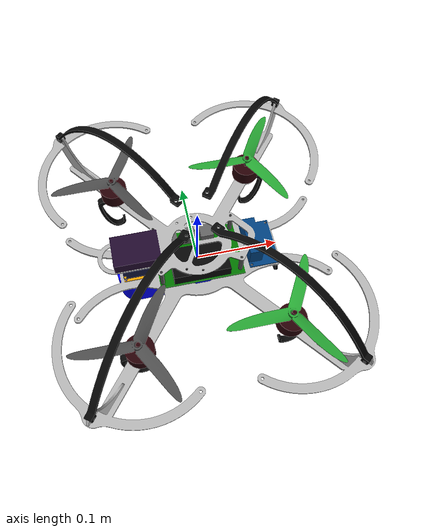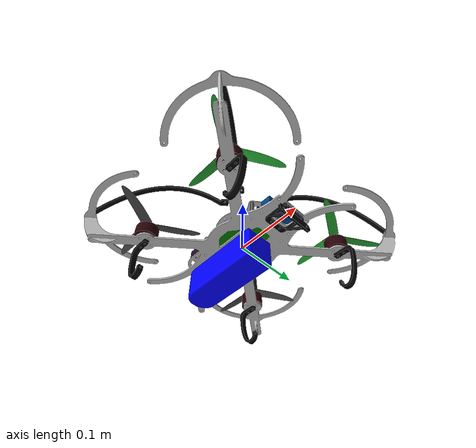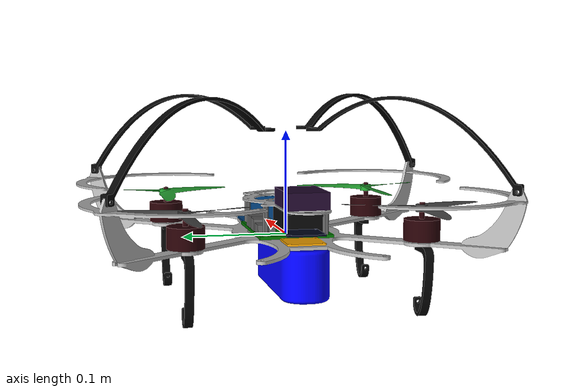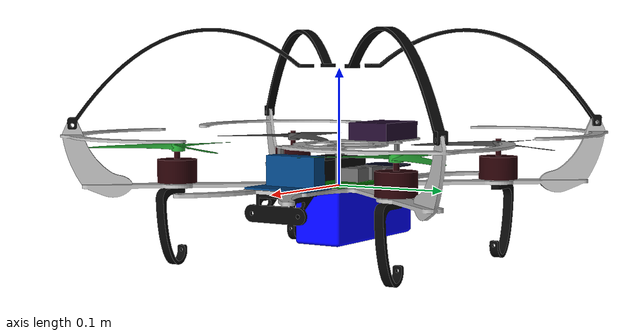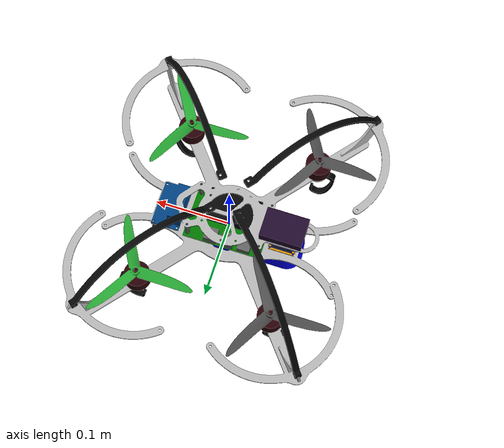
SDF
<?xml version='1.0'?>
<sdf version='1.6'>
  <model name='chris_drone'>
    <link name='base_link'>
      <pose frame=''>0 0 0 0 -0 0</pose>
      <inertial>
        <pose frame=''>0 0 0 0 -0 0</pose>
        <mass>1.24</mass>
        <inertia>
          <ixx>0.01</ixx>
          <ixy>0</ixy>
          <ixz>0</ixz>
          <iyy>0.01</iyy>
          <iyz>0</iyz>
          <izz>0.03</izz>
        </inertia>
      </inertial>
      <collision name='base_link_inertia_collision'>
        <pose frame=''>0 0 0.0325 0 -0 0</pose>
        <geometry>
          <box>
            <size>0.37 0.38 0.195</size>
          </box>
        </geometry>
        <surface>
          <contact>
            <ode>
              <min_depth>0.003</min_depth>
              <max_vel>5</max_vel>
            </ode>
          </contact>
          <friction>
            <ode>
              <mu>10000</mu>
              <mu2>10000</mu2>
            </ode>
          </friction>
          <bounce>
            <restitution_coefficient>0.2</restitution_coefficient>
            <threshold>0</threshold>
          </bounce>
        </surface>
      </collision>
      <visual name='base_link_inertia_visual'>
        <pose frame=''>0 0 0 0 -0 0</pose>
        <geometry>
          <mesh>
            <scale>0.001 0.001 0.001</scale>
            <uri>model://chris_drone/chris_drone.dae</uri>
          </mesh>
        </geometry>
        <material>
          <script>
            <name>frame</name>
            <uri>model://chris_drone/chris_drone.dae</uri>
          </script>
        </material>
      </visual>
      <gravity>1</gravity>
      <velocity_decay/>
    </link>
    <link name='/imu_link'>
      <pose>0 0 0 0 0 0</pose>
      <inertial>
        <mass>0.015</mass>
        <inertia>
          <ixx>1e-05</ixx>
          <ixy>0</ixy>
          <ixz>0</ixz>
          <iyy>1e-05</iyy>
          <iyz>0</iyz>
          <izz>1e-05</izz>
        </inertia>
      </inertial>
    </link>
    <joint name='/imu_joint' type='revolute'>
      <child>/imu_link</child>
      <parent>base_link</parent>
      <axis>
        <xyz>1 0 0</xyz>
        <limit>
          <lower>0</lower>
          <upper>0</upper>
          <effort>0</effort>
          <velocity>0</velocity>
        </limit>
        <dynamics>
          <spring_reference>0</spring_reference>
          <spring_stiffness>0</spring_stiffness>
        </dynamics>
        <use_parent_model_frame>1</use_parent_model_frame>
      </axis>
    </joint>

    <link name='rotor_1'>
      <pose frame=''>0.086 -0.106 0.034 0 0 0</pose>
      <inertial>
        <mass>0.006</mass>
        <inertia>
          <ixx>0.000025</ixx>
          <ixy>0</ixy>
          <ixz>0</ixz>
          <iyy>0.00005</iyy>
          <iyz>0</iyz>
          <izz>0.000025</izz>
        </inertia>
      </inertial>
      <visual name='rotor_1_visual'>
        <geometry>
          <mesh>
            <scale>0.001 0.001 0.001</scale>
            <uri>model://chris_drone/cw6040.stl</uri>
          </mesh>
        </geometry>
        <material>
          <script>
            <name>Gazebo/Green</name>
            <uri>file://media/materials/scripts/gazebo.material</uri>
          </script>
        </material>
      </visual>
      <gravity>1</gravity>
      <velocity_decay/>
    </link>
    <joint name='rotor_1_joint' type='revolute'>
      <child>rotor_1</child>
      <parent>base_link</parent>
      <axis>
        <xyz>0 0 1</xyz>
        <limit>
          <lower>-1e+16</lower>
          <upper>1e+16</upper>
        </limit>
        <dynamics>
          <spring_reference>0</spring_reference>
          <spring_stiffness>0</spring_stiffness>
        </dynamics>
        <use_parent_model_frame>1</use_parent_model_frame>
      </axis>
    </joint>
    <link name='rotor_2'>
      <pose frame=''>-0.088 0.108 0.034 0 0 0</pose>
      <inertial>
        <mass>0.006</mass>
        <inertia>
          <ixx>0.000025</ixx>
          <ixy>0</ixy>
          <ixz>0</ixz>
          <iyy>0.00005</iyy>
          <iyz>0</iyz>
          <izz>0.000025</izz>
        </inertia>
      </inertial>
      <visual name='rotor_2_visual'>
        <geometry>
          <mesh>
            <scale>0.001 0.001 0.001</scale>
            <uri>model://chris_drone/cw6040.stl</uri>
          </mesh>
        </geometry>
        <material>
          <script>
            <name>Gazebo/DarkGrey</name>
            <uri>file://media/materials/scripts/gazebo.material</uri>
          </script>
        </material>
      </visual>
      <gravity>1</gravity>
      <velocity_decay/>
    </link>
    <joint name='rotor_2_joint' type='revolute'>
      <child>rotor_2</child>
      <parent>base_link</parent>
      <axis>
        <xyz>0 0 1</xyz>
        <limit>
          <lower>-1e+16</lower>
          <upper>1e+16</upper>
        </limit>
        <dynamics>
          <spring_reference>0</spring_reference>
          <spring_stiffness>0</spring_stiffness>
        </dynamics>
        <use_parent_model_frame>1</use_parent_model_frame>
      </axis>
    </joint>
    <link name='rotor_3'>
      <pose frame=''>0.088 0.108 0.034 0 0 0</pose>
      <inertial>
        <mass>0.006</mass>
        <inertia>
          <ixx>0.000025</ixx>
          <ixy>0</ixy>
          <ixz>0</ixz>
          <iyy>0.00005</iyy>
          <iyz>0</iyz>
          <izz>0.000025</izz>
        </inertia>
      </inertial>
      <visual name='rotor_3_visual'>
        <geometry>
          <mesh>
            <scale>0.001 0.001 0.001</scale>
            <uri>model://chris_drone/ccw6040.stl</uri>
          </mesh>
        </geometry>
        <material>
          <script>
            <name>Gazebo/Green</name>
            <uri>file://media/materials/scripts/gazebo.material</uri>
          </script>
        </material>
      </visual>
      <gravity>1</gravity>
      <velocity_decay/>
    </link>
    <joint name='rotor_3_joint' type='revolute'>
      <child>rotor_3</child>
      <parent>base_link</parent>
      <axis>
        <xyz>0 0 1</xyz>
        <limit>
          <lower>-1e+16</lower>
          <upper>1e+16</upper>
        </limit>
        <dynamics>
          <spring_reference>0</spring_reference>
          <spring_stiffness>0</spring_stiffness>
        </dynamics>
        <use_parent_model_frame>1</use_parent_model_frame>
      </axis>
    </joint>
    <link name='rotor_4'>
      <pose frame=''>-0.088 -0.107 0.034 0 0 0</pose>
      <inertial>
        <mass>0.006</mass>
        <inertia>
          <ixx>0.000025</ixx>
          <ixy>0</ixy>
          <ixz>0</ixz>
          <iyy>0.00005</iyy>
          <iyz>0</iyz>
          <izz>0.000025</izz>
        </inertia>
      </inertial>
      <visual name='rotor_4_visual'>
        <geometry>
          <mesh>
            <scale>0.001 0.001 0.001</scale>
            <uri>model://chris_drone/ccw6040.stl</uri>
          </mesh>
        </geometry>
        <material>
          <script>
            <name>Gazebo/DarkGrey</name>
            <uri>file://media/materials/scripts/gazebo.material</uri>
          </script>
        </material>
      </visual>
      <gravity>1</gravity>
      <velocity_decay/>
    </link>
    <joint name='rotor_4_joint' type='revolute'>
      <child>rotor_4</child>
      <parent>base_link</parent>
      <axis>
        <xyz>0 0 1</xyz>
        <limit>
          <lower>-1e+16</lower>
          <upper>1e+16</upper>
        </limit>
        <dynamics>
          <spring_reference>0</spring_reference>
          <spring_stiffness>0</spring_stiffness>
        </dynamics>
        <use_parent_model_frame>1</use_parent_model_frame>
      </axis>
    </joint>

    <plugin name='rosbag' filename='libgazebo_multirotor_base_plugin.so'>
      <robotNamespace/>
      <linkName>base_link</linkName>
      <rotorVelocitySlowdownSim>10</rotorVelocitySlowdownSim>
    </plugin>
    <plugin name='front_right_motor_model' filename='libgazebo_motor_model.so'>
      <robotNamespace/>
      <jointName>rotor_1_joint</jointName>
      <linkName>rotor_1</linkName>
      <turningDirection>ccw</turningDirection>
      <timeConstantUp>0.0125</timeConstantUp>
      <timeConstantDown>0.025</timeConstantDown>
      <maxRotVelocity>1100</maxRotVelocity>
      <motorConstant>5.84e-06</motorConstant>
      <momentConstant>0.06</momentConstant>
      <commandSubTopic>/gazebo/command/motor_speed</commandSubTopic>
      <motorNumber>0</motorNumber>
      <rotorDragCoefficient>0.000175</rotorDragCoefficient>
      <rollingMomentCoefficient>1e-06</rollingMomentCoefficient>
      <motorSpeedPubTopic>/motor_speed/0</motorSpeedPubTopic>
      <rotorVelocitySlowdownSim>15</rotorVelocitySlowdownSim>
    </plugin>
    <plugin name='back_left_motor_model' filename='libgazebo_motor_model.so'>
      <robotNamespace/>
      <jointName>rotor_2_joint</jointName>
      <linkName>rotor_2</linkName>
      <turningDirection>ccw</turningDirection>
      <timeConstantUp>0.0125</timeConstantUp>
      <timeConstantDown>0.025</timeConstantDown>
      <maxRotVelocity>1100</maxRotVelocity>
      <motorConstant>5.84e-06</motorConstant>
      <momentConstant>0.06</momentConstant>
      <commandSubTopic>/gazebo/command/motor_speed</commandSubTopic>
      <motorNumber>1</motorNumber>
      <rotorDragCoefficient>0.000175</rotorDragCoefficient>
      <rollingMomentCoefficient>1e-06</rollingMomentCoefficient>
      <motorSpeedPubTopic>/motor_speed/1</motorSpeedPubTopic>
      <rotorVelocitySlowdownSim>15</rotorVelocitySlowdownSim>
    </plugin>
    <plugin name='front_left_motor_model' filename='libgazebo_motor_model.so'>
      <robotNamespace/>
      <jointName>rotor_3_joint</jointName>
      <linkName>rotor_3</linkName>
      <turningDirection>cw</turningDirection>
      <timeConstantUp>0.0125</timeConstantUp>
      <timeConstantDown>0.025</timeConstantDown>
      <maxRotVelocity>1100</maxRotVelocity>
      <motorConstant>5.84e-06</motorConstant>
      <momentConstant>0.06</momentConstant>
      <commandSubTopic>/gazebo/command/motor_speed</commandSubTopic>
      <motorNumber>2</motorNumber>
      <rotorDragCoefficient>0.000175</rotorDragCoefficient>
      <rollingMomentCoefficient>1e-06</rollingMomentCoefficient>
      <motorSpeedPubTopic>/motor_speed/2</motorSpeedPubTopic>
      <rotorVelocitySlowdownSim>15</rotorVelocitySlowdownSim>
    </plugin>
    <plugin name='back_right_motor_model' filename='libgazebo_motor_model.so'>
      <robotNamespace/>
      <jointName>rotor_4_joint</jointName>
      <linkName>rotor_4</linkName>
      <turningDirection>cw</turningDirection>
      <timeConstantUp>0.0125</timeConstantUp>
      <timeConstantDown>0.025</timeConstantDown>
      <maxRotVelocity>1100</maxRotVelocity>
      <motorConstant>5.84e-06</motorConstant>
      <momentConstant>0.06</momentConstant>
      <commandSubTopic>/gazebo/command/motor_speed</commandSubTopic>
      <motorNumber>3</motorNumber>
      <rotorDragCoefficient>0.000175</rotorDragCoefficient>
      <rollingMomentCoefficient>1e-06</rollingMomentCoefficient>
      <motorSpeedPubTopic>/motor_speed/3</motorSpeedPubTopic>
      <rotorVelocitySlowdownSim>15</rotorVelocitySlowdownSim>
    </plugin>

    <model name='gps0'>
      <link name='link'>
        <pose frame=''>0 0 0 0 -0 0</pose>
        <inertial>
          <pose frame=''>0 0 0 0 -0 0</pose>
          <mass>0.01</mass>
          <inertia>
            <ixx>2.1733e-06</ixx>
            <ixy>0</ixy>
            <ixz>0</ixz>
            <iyy>2.1733e-06</iyy>
            <iyz>0</iyz>
            <izz>1.8e-07</izz>
          </inertia>
        </inertial>
        <visual name='visual'>
          <geometry>
            <cylinder>
              <radius>0.01</radius>
              <length>0.002</length>
            </cylinder>
          </geometry>
          <material>
            <script>
              <name>Gazebo/Black</name>
              <uri>__default__</uri>
            </script>
          </material>
        </visual>
        <sensor name='gps' type='gps'>
          <pose frame=''>0 0 0 0 -0 0</pose>
          <plugin name='gps_plugin' filename='libgazebo_gps_plugin.so'>
            <robotNamespace/>
            <gpsNoise>1</gpsNoise>
            <gpsXYRandomWalk>0.2</gpsXYRandomWalk>
            <gpsZRandomWalk>0.4</gpsZRandomWalk>
            <gpsXYNoiseDensity>0.00002</gpsXYNoiseDensity>
            <gpsZNoiseDensity>0.00004</gpsZNoiseDensity>
            <gpsVXYNoiseDensity>0.02</gpsVXYNoiseDensity>
            <gpsVZNoiseDensity>0.04</gpsVZNoiseDensity>
          </plugin>
        </sensor>
      </link>
    </model>
    <joint name='gps0_joint' type='fixed'>
      <parent>base_link</parent>
      <child>gps0::link</child>
    </joint>
    <plugin name='groundtruth_plugin' filename='libgazebo_groundtruth_plugin.so'>
      <robotNamespace/>
    </plugin>
    <plugin name='magnetometer_plugin' filename='libgazebo_magnetometer_plugin.so'>
      <robotNamespace/>
      <pubRate>100</pubRate>
      <noiseDensity>0.0004</noiseDensity>
      <randomWalk>6.4e-07</randomWalk>
      <biasCorrelationTime>60</biasCorrelationTime>
      <magTopic>/mag</magTopic>
    </plugin>
    <plugin name='barometer_plugin' filename='libgazebo_barometer_plugin.so'>
      <robotNamespace/>
      <pubRate>50</pubRate>
      <baroTopic>/baro</baroTopic>
      <baroDriftPaPerSec>0</baroDriftPaPerSec>
    </plugin>

    <plugin name='mavlink_interface' filename='libgazebo_mavlink_interface.so'>
      <robotNamespace/>
      <imuSubTopic>/imu</imuSubTopic>
      <magSubTopic>/mag</magSubTopic>
      <baroSubTopic>/baro</baroSubTopic>
      <mavlink_addr>INADDR_ANY</mavlink_addr>
      <mavlink_udp_port>14560</mavlink_udp_port>
      <mavlink_tcp_port>4560</mavlink_tcp_port>
      <serialEnabled>0</serialEnabled>
      <serialDevice>/dev/ttyACM0</serialDevice>
      <baudRate>921600</baudRate>
      <qgc_addr>INADDR_ANY</qgc_addr>
      <qgc_udp_port>14550</qgc_udp_port>
      <sdk_addr>INADDR_ANY</sdk_addr>
      <sdk_udp_port>14540</sdk_udp_port>
      <hil_mode>0</hil_mode>
      <hil_state_level>0</hil_state_level>
      <vehicle_is_tailsitter>0</vehicle_is_tailsitter>
      <send_vision_estimation>0</send_vision_estimation>
      <send_odometry>1</send_odometry>
      <enable_lockstep>1</enable_lockstep>
      <use_tcp>1</use_tcp>
      <motorSpeedCommandPubTopic>/gazebo/command/motor_speed</motorSpeedCommandPubTopic>
      <control_channels>
        <channel name='rotor1'>
          <input_index>0</input_index>
          <input_offset>0</input_offset>
          <input_scaling>1000</input_scaling>
          <zero_position_disarmed>0</zero_position_disarmed>
          <zero_position_armed>100</zero_position_armed>
          <joint_control_type>velocity</joint_control_type>
        </channel>
        <channel name='rotor2'>
          <input_index>1</input_index>
          <input_offset>0</input_offset>
          <input_scaling>1000</input_scaling>
          <zero_position_disarmed>0</zero_position_disarmed>
          <zero_position_armed>100</zero_position_armed>
          <joint_control_type>velocity</joint_control_type>
        </channel>
        <channel name='rotor3'>
          <input_index>2</input_index>
          <input_offset>0</input_offset>
          <input_scaling>1000</input_scaling>
          <zero_position_disarmed>0</zero_position_disarmed>
          <zero_position_armed>100</zero_position_armed>
          <joint_control_type>velocity</joint_control_type>
        </channel>
        <channel name='rotor4'>
          <input_index>3</input_index>
          <input_offset>0</input_offset>
          <input_scaling>1000</input_scaling>
          <zero_position_disarmed>0</zero_position_disarmed>
          <zero_position_armed>100</zero_position_armed>
          <joint_control_type>velocity</joint_control_type>
        </channel>
      </control_channels>
    </plugin>
    <static>0</static>
    <plugin name='rotors_gazebo_imu_plugin' filename='libgazebo_imu_plugin.so'>
      <robotNamespace/>
      <linkName>/imu_link</linkName>
      <imuTopic>/imu</imuTopic>
      <gyroscopeNoiseDensity>0.000018665</gyroscopeNoiseDensity>
      <gyroscopeRandomWalk>3.8785e-06</gyroscopeRandomWalk>
      <gyroscopeBiasCorrelationTime>100.0</gyroscopeBiasCorrelationTime>
      <gyroscopeTurnOnBiasSigma>0.00087</gyroscopeTurnOnBiasSigma>
      <accelerometerNoiseDensity>0.000186</accelerometerNoiseDensity>
      <accelerometerRandomWalk>0.0006</accelerometerRandomWalk>
      <accelerometerBiasCorrelationTime>30.0</accelerometerBiasCorrelationTime>
      <accelerometerTurnOnBiasSigma>0.0196</accelerometerTurnOnBiasSigma>
    </plugin>

  </model>
</sdf>
